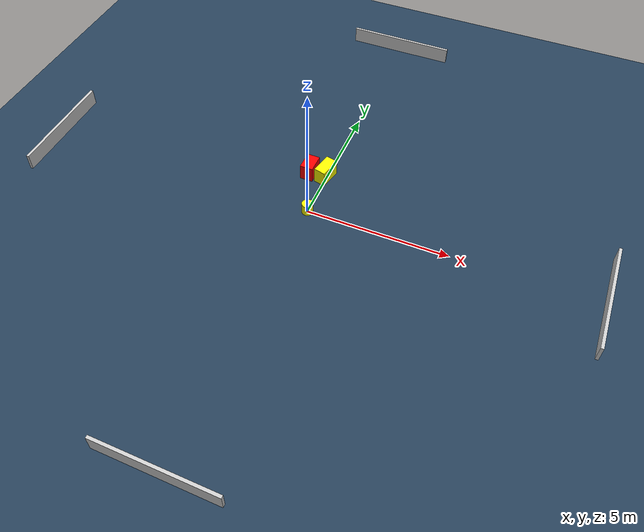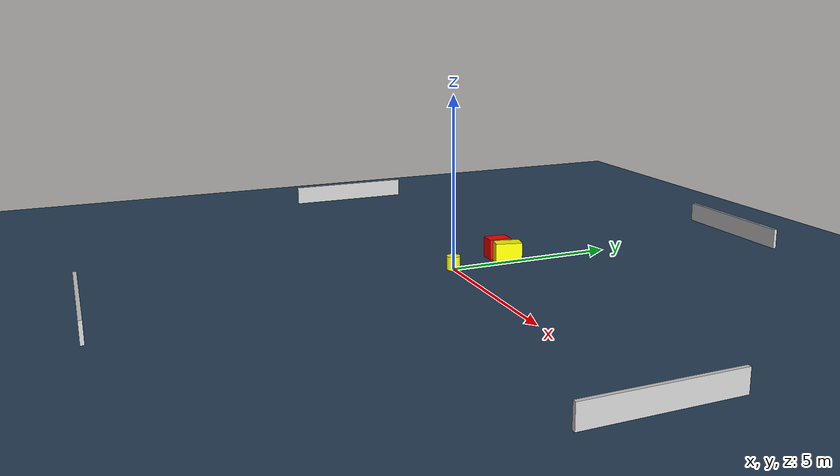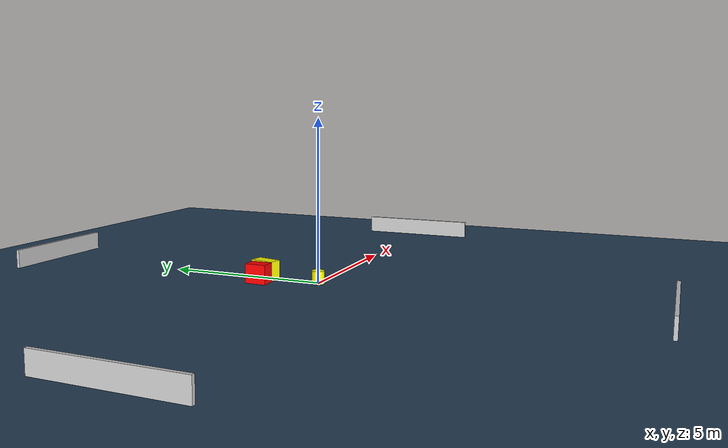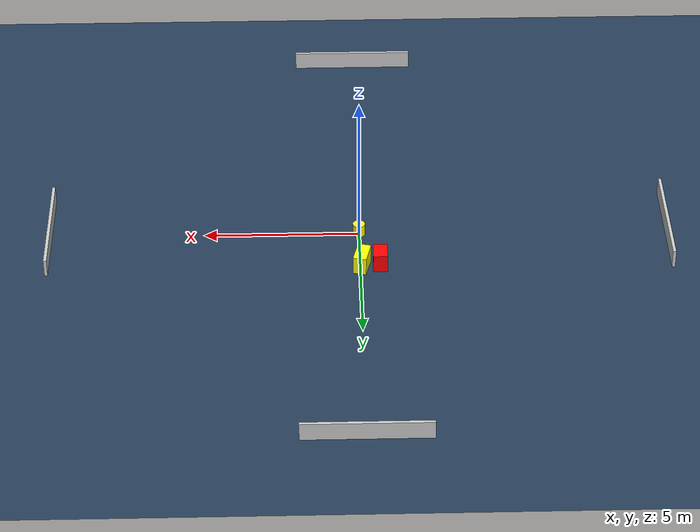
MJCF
<?xml version="1.0" ?>
<mujoco model="generated_environment">
  <option timestep="0.01" integrator="RK4" cone="elliptic"/>
  <default>
    <geom density="1"/>
  </default>
  <asset>
    <texture builtin="gradient" height="3072" name="skybox" rgb1="0.3 0.5 0.7" rgb2="0 0 0" type="skybox" width="512"/>
    <texture builtin="checker" height="300" name="groundplane" rgb1="0.2 0.3 0.4" rgb2="0.1 0.2 0.3" type="2d" width="300"/>
    <material name="groundplane" reflectance="0.2" texrepeat="5 5" texture="groundplane"/>
  </asset>
  <worldbody>
    <light dir="0 0 -1" directional="true" pos="0 0 1.5"/>
    <geom condim="3" friction="0.5 0.005 0.001" material="groundplane" name="floor" pos="0 0 0" size="0 0 0.05" type="plane"/>
    <body name="walls">
      <geom name="wall_1" condim="4" pos="-10.0 0.0 0.3" rgba="0.800000011920929 0.800000011920929 0.800000011920929 1.0" size="0.05 2.0 0.3" type="box"/>
      <geom name="wall_2" condim="4" pos="10.0 0.0 0.3" rgba="0.800000011920929 0.800000011920929 0.800000011920929 1.0" size="0.05 2.0 0.3" type="box"/>
      <geom name="wall_3" condim="4" pos="0.0 -10.0 0.3" rgba="0.800000011920929 0.800000011920929 0.800000011920929 1.0" size="2.0 0.05 0.3" type="box"/>
      <geom name="wall_4" condim="4" pos="0.0 10.0 0.3" rgba="0.800000011920929 0.800000011920929 0.800000011920929 1.0" size="2.0 0.05 0.3" type="box"/>
    </body>
    <body name="robot">
      <joint name="joint_x" type="slide" pos="0 0 0" axis="1 0 0"/>
      <joint name="joint_y" type="slide" pos="0 0 0" axis="0 1 0"/>
      <geom name="robot" type="cylinder" pos="0.0 0.0 0.2" size="0.2 0.2 0.0" mass="5.0" friction="1.0 0.005 0.0001" condim="4" rgba="1.0 1.0 0.0 1.0"/>
    </body>
    <body name="obstacle_1_movable">
      <geom name="obstacle_1_movable" condim="4" pos="-0.05743711484120539 1.764591522141416 0.3" euler="0 0 76.67532476315033" friction="0.0 0.005 0.001" rgba="1.0 1.0 0.0 1.0" size="0.3903424105437726 0.21255269012425126 0.3" type="box" mass="0.1"/>
      <joint type="free"/>
    </body>
    <body name="obstacle_2_static">
      <geom name="obstacle_2_static" condim="4" pos="-0.6369855047826825 1.7099647191288643 0.3" euler="0 0 359.34160892393777" friction="0.0 0.005 0.001" rgba="1.0 0.0 0.0 1.0" size="0.22864675322788863 0.33334431691666344 0.3" type="box"/>
    </body>
  </worldbody>
  <actuator>
    <motor name="actuator_x" joint="joint_x" gear="1" ctrlrange="-1 1"/>
    <motor name="actuator_y" joint="joint_y" gear="1" ctrlrange="-1 1"/>
  </actuator>
</mujoco>
